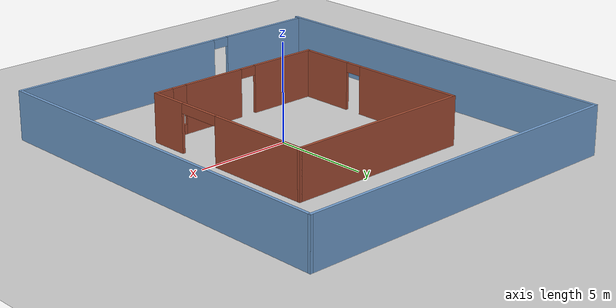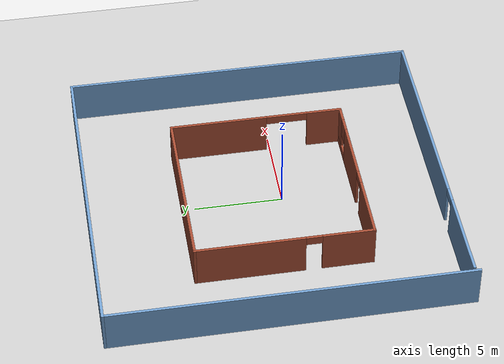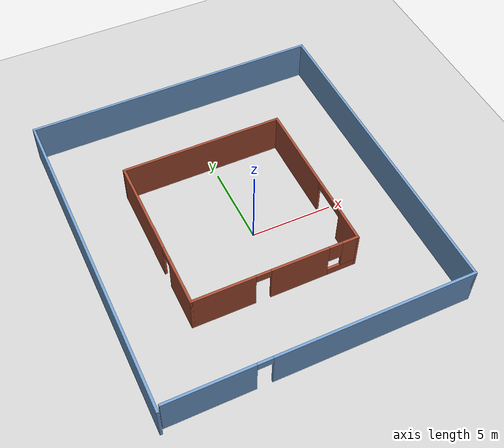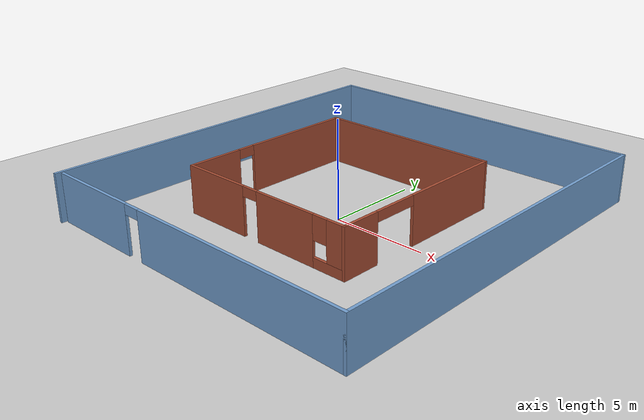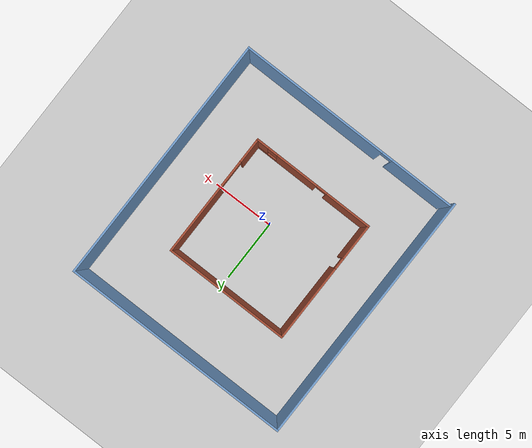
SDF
<sdf version="1.7">
 <world name="default">
  <plugin name="hello" filename="libhello.so"/>
  <light name="sun" type="directional">
   <pose>0 0 10 0 -0 0</pose>
   <diffuse>0.8 0.8 0.8 1</diffuse>
   <specular>0.2 0.2 0.2 1</specular>
   <attenuation>
    <range>1000</range>
    <constant>0.9</constant>
    <linear>0.01</linear>
    <quadratic>0.001</quadratic>
   </attenuation>
   <direction>-0.5 0.1 -0.9</direction>
   <spot><inner_angle>0</inner_angle><outer_angle>0</outer_angle><falloff>0</falloff></spot>
  </light>
  <model name="ground_plane">
   <static>1</static>
   <link name="link">
    <collision name="collision">
     <geometry><plane><normal>0 0 1</normal><size>100 100</size></plane></geometry>
     <surface><friction><ode><mu>100</mu><mu2>50</mu2></ode></friction></surface>
    </collision>
    <visual name="visual">
     <cast_shadows>0</cast_shadows>
     <geometry><plane><normal>0 0 1</normal><size>100 100</size></plane></geometry>
     <material>
      <script><uri>file://media/materials/scripts/gazebo.material</uri><name>Gazebo/Grey</name></script>
     </material>
    </visual>
   </link>
  </model>
  <gravity>0 0 -9.8</gravity>
  <magnetic_field>6e-06 2.3e-05 -4.2e-05</magnetic_field>
  <atmosphere type="adiabatic"/>
  <physics type="ode">
   <max_step_size>0.001</max_step_size>
   <real_time_factor>1</real_time_factor>
   <real_time_update_rate>1000</real_time_update_rate>
  </physics>
  <scene><ambient>0.4 0.4 0.4 1</ambient><background>0.7 0.7 0.7 1</background><shadows>1</shadows></scene>
  <spherical_coordinates>
   <surface_model>EARTH_WGS84</surface_model>
   <latitude_deg>0</latitude_deg>
   <longitude_deg>0</longitude_deg>
   <elevation>0</elevation>
   <heading_deg>0</heading_deg>
  </spherical_coordinates>
  <model name="Building">
   <pose>-0.309098 0.99083 0 0 -0 0</pose>
   <link name="Wall_0">
    <pose>-0.326805 -5.13204 0 0 -0 0</pose>
    <visual name="Wall_0_Visual_0">
     <pose>-3.108 0 1.25 0 -0 0</pose>
     <geometry><box><size>3.78399 0.15 2.5</size></box></geometry>
     <material>
      <script><uri>file://media/materials/scripts/gazebo.material</uri><name>Gazebo/Bricks</name></script>
      <ambient>0.447059 0.623529 0.811765 1</ambient>
     </material>
     <meta><layer>0</layer></meta>
    </visual>
    <collision name="Wall_0_Collision_0">
     <geometry><box><size>3.78399 0.15 2.5</size></box></geometry>
     <pose>-3.108 0 1.25 0 -0 0</pose>
    </collision>
    <visual name="Wall_0_Visual_1">
     <pose>1.42835 0 1.25 0 -0 0</pose>
     <geometry><box><size>3.48871 0.15 2.5</size></box></geometry>
     <material>
      <script><uri>file://media/materials/scripts/gazebo.material</uri><name>Gazebo/Bricks</name></script>
      <ambient>0.447059 0.623529 0.811765 1</ambient>
     </material>
     <meta><layer>0</layer></meta>
    </visual>
    <collision name="Wall_0_Collision_1">
     <geometry><box><size>3.48871 0.15 2.5</size></box></geometry>
     <pose>1.42835 0 1.25 0 -0 0</pose>
    </collision>
    <visual name="Wall_0_Visual_2">
     <pose>4.08635 0 0.25 0 -0 0</pose>
     <geometry><box><size>1.8273 0.15 0.5</size></box></geometry>
     <material>
      <script><uri>file://media/materials/scripts/gazebo.material</uri><name>Gazebo/Bricks</name></script>
      <ambient>0.447059 0.623529 0.811765 1</ambient>
     </material>
     <meta><layer>0</layer></meta>
    </visual>
    <collision name="Wall_0_Collision_2">
     <geometry><box><size>1.8273 0.15 0.5</size></box></geometry>
     <pose>4.08635 0 0.25 0 -0 0</pose>
    </collision>
    <visual name="Wall_0_Visual_3">
     <pose>4.48635 0 1.5 0 -0 0</pose>
     <geometry><box><size>1.0273 0.15 2</size></box></geometry>
     <material>
      <script><uri>file://media/materials/scripts/gazebo.material</uri><name>Gazebo/Bricks</name></script>
      <ambient>0.447059 0.623529 0.811765 1</ambient>
     </material>
     <meta><layer>0</layer></meta>
    </visual>
    <collision name="Wall_0_Collision_3">
     <geometry><box><size>1.0273 0.15 2</size></box></geometry>
     <pose>4.48635 0 1.5 0 -0 0</pose>
    </collision>
    <visual name="Wall_0_Visual_4">
     <pose>3.5727 0 1.9 0 -0 0</pose>
     <geometry><box><size>0.8 0.15 1.2</size></box></geometry>
     <material>
      <script><uri>file://media/materials/scripts/gazebo.material</uri><name>Gazebo/Bricks</name></script>
      <ambient>0.447059 0.623529 0.811765 1</ambient>
     </material>
     <meta><layer>0</layer></meta>
    </visual>
    <collision name="Wall_0_Collision_4">
     <geometry><box><size>0.8 0.15 1.2</size></box></geometry>
     <pose>3.5727 0 1.9 0 -0 0</pose>
    </collision>
    <visual name="Wall_0_Visual_5">
     <pose>-0.766011 0 2.25 0 -0 0</pose>
     <geometry><box><size>0.9 0.15 0.5</size></box></geometry>
     <material>
      <script><uri>file://media/materials/scripts/gazebo.material</uri><name>Gazebo/Bricks</name></script>
      <ambient>0.447059 0.623529 0.811765 1</ambient>
     </material>
     <meta><layer>0</layer></meta>
    </visual>
    <collision name="Wall_0_Collision_5">
     <geometry><box><size>0.9 0.15 0.5</size></box></geometry>
     <pose>-0.766011 0 2.25 0 -0 0</pose>
    </collision>
   </link>
   <link name="Wall_1">
    <pose>4.59819 -0.207045 0 0 -0 1.5708</pose>
    <visual name="Wall_1_Visual_0">
     <pose>-3.9794 0 1.25 0 -0 0</pose>
     <geometry><box><size>2.0412 0.15 2.5</size></box></geometry>
     <material>
      <script><uri>file://media/materials/scripts/gazebo.material</uri><name>Gazebo/Bricks</name></script>
      <ambient>0.447059 0.623529 0.811765 1</ambient>
     </material>
     <meta><layer>0</layer></meta>
    </visual>
    <collision name="Wall_1_Collision_0">
     <geometry><box><size>2.0412 0.15 2.5</size></box></geometry>
     <pose>-3.9794 0 1.25 0 -0 0</pose>
    </collision>
    <visual name="Wall_1_Visual_1">
     <pose>2.1988 0 1.25 0 -0 0</pose>
     <geometry><box><size>5.60239 0.15 2.5</size></box></geometry>
     <material>
      <script><uri>file://media/materials/scripts/gazebo.material</uri><name>Gazebo/Bricks</name></script>
      <ambient>0.447059 0.623529 0.811765 1</ambient>
     </material>
     <meta><layer>0</layer></meta>
    </visual>
    <collision name="Wall_1_Collision_1">
     <geometry><box><size>5.60239 0.15 2.5</size></box></geometry>
     <pose>2.1988 0 1.25 0 -0 0</pose>
    </collision>
    <visual name="Wall_1_Visual_2">
     <pose>-1.7806 0 2.25 0 -0 0</pose>
     <geometry><box><size>2.3564 0.15 0.5</size></box></geometry>
     <material>
      <script><uri>file://media/materials/scripts/gazebo.material</uri><name>Gazebo/Bricks</name></script>
      <ambient>0.447059 0.623529 0.811765 1</ambient>
     </material>
     <meta><layer>0</layer></meta>
    </visual>
    <collision name="Wall_1_Collision_2">
     <geometry><box><size>2.3564 0.15 0.5</size></box></geometry>
     <pose>-1.7806 0 2.25 0 -0 0</pose>
    </collision>
   </link>
   <link name="Wall_2">
    <collision name="Wall_2_Collision">
     <geometry><box><size>10 0.15 2.5</size></box></geometry>
     <pose>0 0 1.25 0 -0 0</pose>
    </collision>
    <visual name="Wall_2_Visual">
     <pose>0 0 1.25 0 -0 0</pose>
     <geometry><box><size>10 0.15 2.5</size></box></geometry>
     <material>
      <script><uri>file://media/materials/scripts/gazebo.material</uri><name>Gazebo/Bricks</name></script>
      <ambient>0.447059 0.623529 0.811765 1</ambient>
     </material>
     <meta><layer>0</layer></meta>
    </visual>
    <pose>-0.326805 4.71796 0 0 -0 3.14159</pose>
   </link>
   <link name="Wall_3">
    <pose>-5.25181 -0.207045 0 0 -0 -1.5708</pose>
    <visual name="Wall_3_Visual_0">
     <pose>-1.92236 0 1.25 0 -0 0</pose>
     <geometry><box><size>6.15529 0.15 2.5</size></box></geometry>
     <material>
      <script><uri>file://media/materials/scripts/gazebo.material</uri><name>Gazebo/Bricks</name></script>
      <ambient>1 1 1 1</ambient>
     </material>
     <meta><layer>0</layer></meta>
    </visual>
    <collision name="Wall_3_Collision_0">
     <geometry><box><size>6.15529 0.15 2.5</size></box></geometry>
     <pose>-1.92236 0 1.25 0 -0 0</pose>
    </collision>
    <visual name="Wall_3_Visual_1">
     <pose>3.52764 0 1.25 0 -0 0</pose>
     <geometry><box><size>2.94471 0.15 2.5</size></box></geometry>
     <material>
      <script><uri>file://media/materials/scripts/gazebo.material</uri><name>Gazebo/Bricks</name></script>
      <ambient>1 1 1 1</ambient>
     </material>
     <meta><layer>0</layer></meta>
    </visual>
    <collision name="Wall_3_Collision_1">
     <geometry><box><size>2.94471 0.15 2.5</size></box></geometry>
     <pose>3.52764 0 1.25 0 -0 0</pose>
    </collision>
    <visual name="Wall_3_Visual_2">
     <pose>1.60529 0 2.25 0 -0 0</pose>
     <geometry><box><size>0.9 0.15 0.5</size></box></geometry>
     <material>
      <script><uri>file://media/materials/scripts/gazebo.material</uri><name>Gazebo/Bricks</name></script>
      <ambient>1 1 1 1</ambient>
     </material>
     <meta><layer>0</layer></meta>
    </visual>
    <collision name="Wall_3_Collision_2">
     <geometry><box><size>0.9 0.15 0.5</size></box></geometry>
     <pose>1.60529 0 2.25 0 -0 0</pose>
    </collision>
   </link>
   <link name="Wall_5">
    <pose>0.125 -9.8 0 0 -0 0</pose>
    <visual name="Wall_5_Visual_0">
     <pose>-6.42415 0 1.25 0 -0 0</pose>
     <geometry><box><size>5.15169 0.15 2.5</size></box></geometry>
     <material>
      <script><uri>file://media/materials/scripts/gazebo.material</uri><name>Gazebo/Grey</name></script>
      <ambient>0.447059 0.623529 0.811765 1</ambient>
     </material>
     <meta><layer>0</layer></meta>
    </visual>
    <collision name="Wall_5_Collision_0">
     <geometry><box><size>5.15169 0.15 2.5</size></box></geometry>
     <pose>-6.42415 0 1.25 0 -0 0</pose>
    </collision>
    <visual name="Wall_5_Visual_1">
     <pose>3.02585 0 1.25 0 -0 0</pose>
     <geometry><box><size>11.9483 0.15 2.5</size></box></geometry>
     <material>
      <script><uri>file://media/materials/scripts/gazebo.material</uri><name>Gazebo/Grey</name></script>
      <ambient>0.447059 0.623529 0.811765 1</ambient>
     </material>
     <meta><layer>0</layer></meta>
    </visual>
    <collision name="Wall_5_Collision_1">
     <geometry><box><size>11.9483 0.15 2.5</size></box></geometry>
     <pose>3.02585 0 1.25 0 -0 0</pose>
    </collision>
    <visual name="Wall_5_Visual_2">
     <pose>-3.39831 0 2.25 0 -0 0</pose>
     <geometry><box><size>0.9 0.15 0.5</size></box></geometry>
     <material>
      <script><uri>file://media/materials/scripts/gazebo.material</uri><name>Gazebo/Grey</name></script>
      <ambient>0.447059 0.623529 0.811765 1</ambient>
     </material>
     <meta><layer>0</layer></meta>
    </visual>
    <collision name="Wall_5_Collision_2">
     <geometry><box><size>0.9 0.15 0.5</size></box></geometry>
     <pose>-3.39831 0 2.25 0 -0 0</pose>
    </collision>
   </link>
   <link name="Wall_6">
    <collision name="Wall_6_Collision">
     <geometry><box><size>20 0.15 2.5</size></box></geometry>
     <pose>0 0 1.25 0 -0 0</pose>
    </collision>
    <visual name="Wall_6_Visual">
     <pose>0 0 1.25 0 -0 0</pose>
     <geometry><box><size>20 0.15 2.5</size></box></geometry>
     <material>
      <script><uri>file://media/materials/scripts/gazebo.material</uri><name>Gazebo/Grey</name></script>
      <ambient>0.447059 0.623529 0.811765 1</ambient>
     </material>
     <meta><layer>0</layer></meta>
    </visual>
    <pose>9.05 0.125 0 0 -0 1.5708</pose>
   </link>
   <link name="Wall_7">
    <collision name="Wall_7_Collision">
     <geometry><box><size>18.25 0.15 2.5</size></box></geometry>
     <pose>0 0 1.25 0 -0 0</pose>
    </collision>
    <visual name="Wall_7_Visual">
     <pose>0 0 1.25 0 -0 0</pose>
     <geometry><box><size>18.25 0.15 2.5</size></box></geometry>
     <material>
      <script><uri>file://media/materials/scripts/gazebo.material</uri><name>Gazebo/Grey</name></script>
      <ambient>0.447059 0.623529 0.811765 1</ambient>
     </material>
     <meta><layer>0</layer></meta>
    </visual>
    <pose>0 10.05 0 0 -0 3.14159</pose>
   </link>
   <link name="Wall_8">
    <collision name="Wall_8_Collision">
     <geometry><box><size>20.25 0.15 2.5</size></box></geometry>
     <pose>0 0 1.25 0 -0 0</pose>
    </collision>
    <visual name="Wall_8_Visual">
     <pose>0 0 1.25 0 -0 0</pose>
     <geometry><box><size>20.25 0.15 2.5</size></box></geometry>
     <material>
      <script><uri>file://media/materials/scripts/gazebo.material</uri><name>Gazebo/Grey</name></script>
      <ambient>0.447059 0.623529 0.811765 1</ambient>
     </material>
     <meta><layer>0</layer></meta>
    </visual>
    <pose>-9.05 0 0 0 -0 -1.5708</pose>
   </link>
   <static>1</static>
  </model>
 </world>
</sdf>
